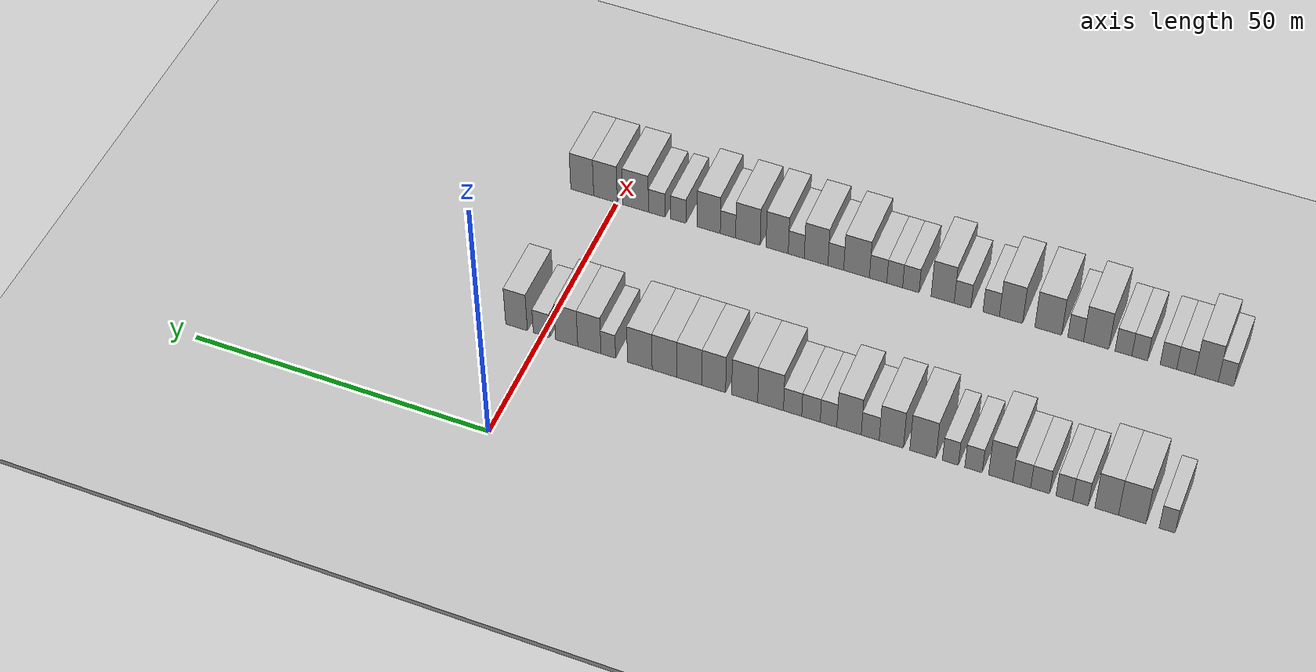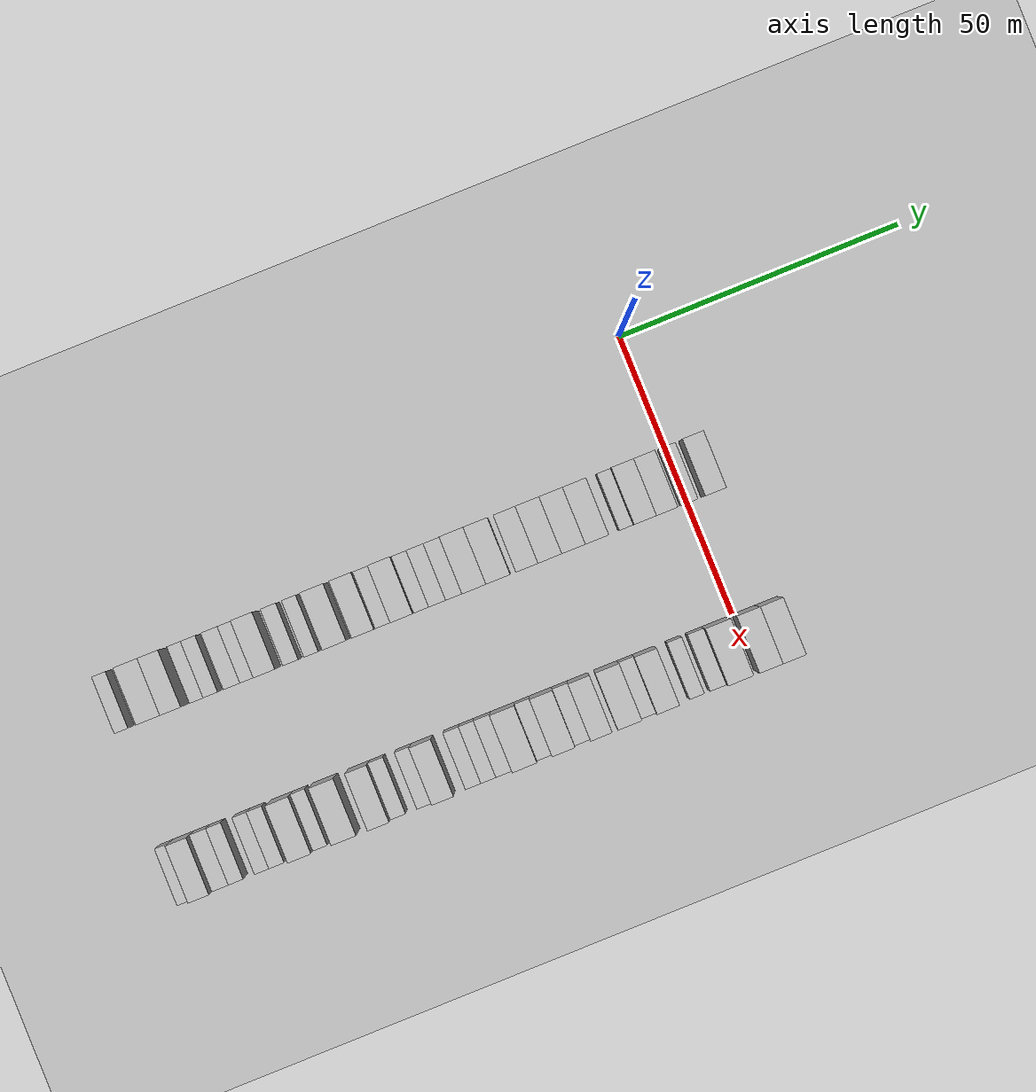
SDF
<sdf version="1.6">
 <world name="default">
  <include><name>ground_plane_1</name><uri>model://HANNAS_ground_plane</uri></include>
  <include>
   <name>ground_plane_2</name>
   <uri>model://HANNAS_ground_plane</uri>
   <pose>100 0 0  0 0 0</pose>
  </include>
  <model name="building_32">
   <static>1</static>
   <pose>25.0000 -100.3244 0 0.000000 0.000000 0.000000</pose>
   <link name="link">
    <pose>0 0 3.00 0 0 0</pose>
    <collision name="collision"><geometry><box><size>10.0000 2.4247 6.0000</size></box></geometry></collision>
    <visual name="visual">
     <cast_shadows>0</cast_shadows>
     <geometry><box><size>10.0000 2.4247 6.0000</size></box></geometry>
     <material>
      <script>
       <uri>model://HANNAS_wall/materials/scripts</uri>
       <uri>model://HANNAS_wall/materials/textures</uri>
       <name>vrc/HANNAS_wall</name>
      </script>
     </material>
    </visual>
   </link>
  </model>
  <model name="building_33">
   <static>1</static>
   <pose>25.0000 -95.0097 0 0.000000 0.000000 0.000000</pose>
   <link name="link">
    <pose>0 0 4.50 0 0 0</pose>
    <collision name="collision"><geometry><box><size>10.0000 4.2046 9.0000</size></box></geometry></collision>
    <visual name="visual">
     <cast_shadows>0</cast_shadows>
     <geometry><box><size>10.0000 4.2046 9.0000</size></box></geometry>
     <material>
      <script>
       <uri>model://HANNAS_wall/materials/scripts</uri>
       <uri>model://HANNAS_wall/materials/textures</uri>
       <name>vrc/HANNAS_wall</name>
      </script>
     </material>
    </visual>
   </link>
  </model>
  <model name="building_34">
   <static>1</static>
   <pose>25.0000 -91.0853 0 0.000000 0.000000 0.000000</pose>
   <link name="link">
    <pose>0 0 4.50 0 0 0</pose>
    <collision name="collision"><geometry><box><size>10.0000 3.6442 9.0000</size></box></geometry></collision>
    <visual name="visual">
     <cast_shadows>0</cast_shadows>
     <geometry><box><size>10.0000 3.6442 9.0000</size></box></geometry>
     <material>
      <script>
       <uri>model://HANNAS_wall/materials/scripts</uri>
       <uri>model://HANNAS_wall/materials/textures</uri>
       <name>vrc/HANNAS_wall</name>
      </script>
     </material>
    </visual>
   </link>
  </model>
  <model name="building_35">
   <static>1</static>
   <pose>25.0000 -87.0597 0 0.000000 0.000000 0.000000</pose>
   <link name="link">
    <pose>0 0 3.00 0 0 0</pose>
    <collision name="collision"><geometry><box><size>10.0000 2.4070 6.0000</size></box></geometry></collision>
    <visual name="visual">
     <cast_shadows>0</cast_shadows>
     <geometry><box><size>10.0000 2.4070 6.0000</size></box></geometry>
     <material>
      <script>
       <uri>model://HANNAS_wall/materials/scripts</uri>
       <uri>model://HANNAS_wall/materials/textures</uri>
       <name>vrc/HANNAS_wall</name>
      </script>
     </material>
    </visual>
   </link>
  </model>
  <model name="building_36">
   <static>1</static>
   <pose>25.0000 -84.5684 0 0.000000 0.000000 0.000000</pose>
   <link name="link">
    <pose>0 0 3.00 0 0 0</pose>
    <collision name="collision"><geometry><box><size>10.0000 2.5756 6.0000</size></box></geometry></collision>
    <visual name="visual">
     <cast_shadows>0</cast_shadows>
     <geometry><box><size>10.0000 2.5756 6.0000</size></box></geometry>
     <material>
      <script>
       <uri>model://HANNAS_wall/materials/scripts</uri>
       <uri>model://HANNAS_wall/materials/textures</uri>
       <name>vrc/HANNAS_wall</name>
      </script>
     </material>
    </visual>
   </link>
  </model>
  <model name="building_37">
   <static>1</static>
   <pose>25.0000 -80.8199 0 0.000000 0.000000 0.000000</pose>
   <link name="link">
    <pose>0 0 3.00 0 0 0</pose>
    <collision name="collision"><geometry><box><size>10.0000 2.9214 6.0000</size></box></geometry></collision>
    <visual name="visual">
     <cast_shadows>0</cast_shadows>
     <geometry><box><size>10.0000 2.9214 6.0000</size></box></geometry>
     <material>
      <script>
       <uri>model://HANNAS_wall/materials/scripts</uri>
       <uri>model://HANNAS_wall/materials/textures</uri>
       <name>vrc/HANNAS_wall</name>
      </script>
     </material>
    </visual>
   </link>
  </model>
  <model name="building_38">
   <static>1</static>
   <pose>25.0000 -77.9634 0 0.000000 0.000000 0.000000</pose>
   <link name="link">
    <pose>0 0 3.00 0 0 0</pose>
    <collision name="collision"><geometry><box><size>10.0000 2.7915 6.0000</size></box></geometry></collision>
    <visual name="visual">
     <cast_shadows>0</cast_shadows>
     <geometry><box><size>10.0000 2.7915 6.0000</size></box></geometry>
     <material>
      <script>
       <uri>model://HANNAS_wall/materials/scripts</uri>
       <uri>model://HANNAS_wall/materials/textures</uri>
       <name>vrc/HANNAS_wall</name>
      </script>
     </material>
    </visual>
   </link>
  </model>
  <model name="building_39">
   <static>1</static>
   <pose>25.0000 -74.6773 0 0.000000 0.000000 0.000000</pose>
   <link name="link">
    <pose>0 0 4.50 0 0 0</pose>
    <collision name="collision"><geometry><box><size>10.0000 3.7808 9.0000</size></box></geometry></collision>
    <visual name="visual">
     <cast_shadows>0</cast_shadows>
     <geometry><box><size>10.0000 3.7808 9.0000</size></box></geometry>
     <material>
      <script>
       <uri>model://HANNAS_wall/materials/scripts</uri>
       <uri>model://HANNAS_wall/materials/textures</uri>
       <name>vrc/HANNAS_wall</name>
      </script>
     </material>
    </visual>
   </link>
  </model>
  <model name="building_40">
   <static>1</static>
   <pose>25.0000 -70.4154 0 0.000000 0.000000 0.000000</pose>
   <link name="link">
    <pose>0 0 3.00 0 0 0</pose>
    <collision name="collision"><geometry><box><size>10.0000 2.7430 6.0000</size></box></geometry></collision>
    <visual name="visual">
     <cast_shadows>0</cast_shadows>
     <geometry><box><size>10.0000 2.7430 6.0000</size></box></geometry>
     <material>
      <script>
       <uri>model://HANNAS_wall/materials/scripts</uri>
       <uri>model://HANNAS_wall/materials/textures</uri>
       <name>vrc/HANNAS_wall</name>
      </script>
     </material>
    </visual>
   </link>
  </model>
  <model name="building_41">
   <static>1</static>
   <pose>25.0000 -66.7813 0 0.000000 0.000000 0.000000</pose>
   <link name="link">
    <pose>0 0 3.00 0 0 0</pose>
    <collision name="collision"><geometry><box><size>10.0000 2.5254 6.0000</size></box></geometry></collision>
    <visual name="visual">
     <cast_shadows>0</cast_shadows>
     <geometry><box><size>10.0000 2.5254 6.0000</size></box></geometry>
     <material>
      <script>
       <uri>model://HANNAS_wall/materials/scripts</uri>
       <uri>model://HANNAS_wall/materials/textures</uri>
       <name>vrc/HANNAS_wall</name>
      </script>
     </material>
    </visual>
   </link>
  </model>
  <model name="building_42">
   <static>1</static>
   <pose>25.0000 -62.4345 0 0.000000 0.000000 0.000000</pose>
   <link name="link">
    <pose>0 0 4.50 0 0 0</pose>
    <collision name="collision"><geometry><box><size>10.0000 4.1681 9.0000</size></box></geometry></collision>
    <visual name="visual">
     <cast_shadows>0</cast_shadows>
     <geometry><box><size>10.0000 4.1681 9.0000</size></box></geometry>
     <material>
      <script>
       <uri>model://HANNAS_wall/materials/scripts</uri>
       <uri>model://HANNAS_wall/materials/textures</uri>
       <name>vrc/HANNAS_wall</name>
      </script>
     </material>
    </visual>
   </link>
  </model>
  <model name="building_43">
   <static>1</static>
   <pose>25.0000 -57.4151 0 0.000000 0.000000 0.000000</pose>
   <link name="link">
    <pose>0 0 4.50 0 0 0</pose>
    <collision name="collision"><geometry><box><size>10.0000 3.8708 9.0000</size></box></geometry></collision>
    <visual name="visual">
     <cast_shadows>0</cast_shadows>
     <geometry><box><size>10.0000 3.8708 9.0000</size></box></geometry>
     <material>
      <script>
       <uri>model://HANNAS_wall/materials/scripts</uri>
       <uri>model://HANNAS_wall/materials/textures</uri>
       <name>vrc/HANNAS_wall</name>
      </script>
     </material>
    </visual>
   </link>
  </model>
  <model name="building_44">
   <static>1</static>
   <pose>25.0000 -54.0437 0 0.000000 0.000000 0.000000</pose>
   <link name="link">
    <pose>0 0 3.00 0 0 0</pose>
    <collision name="collision"><geometry><box><size>10.0000 2.8720 6.0000</size></box></geometry></collision>
    <visual name="visual">
     <cast_shadows>0</cast_shadows>
     <geometry><box><size>10.0000 2.8720 6.0000</size></box></geometry>
     <material>
      <script>
       <uri>model://HANNAS_wall/materials/scripts</uri>
       <uri>model://HANNAS_wall/materials/textures</uri>
       <name>vrc/HANNAS_wall</name>
      </script>
     </material>
    </visual>
   </link>
  </model>
  <model name="building_45">
   <static>1</static>
   <pose>25.0000 -50.6438 0 0.000000 0.000000 0.000000</pose>
   <link name="link">
    <pose>0 0 4.50 0 0 0</pose>
    <collision name="collision"><geometry><box><size>10.0000 3.9276 9.0000</size></box></geometry></collision>
    <visual name="visual">
     <cast_shadows>0</cast_shadows>
     <geometry><box><size>10.0000 3.9276 9.0000</size></box></geometry>
     <material>
      <script>
       <uri>model://HANNAS_wall/materials/scripts</uri>
       <uri>model://HANNAS_wall/materials/textures</uri>
       <name>vrc/HANNAS_wall</name>
      </script>
     </material>
    </visual>
   </link>
  </model>
  <model name="building_46">
   <static>1</static>
   <pose>25.0000 -47.3493 0 0.000000 0.000000 0.000000</pose>
   <link name="link">
    <pose>0 0 3.00 0 0 0</pose>
    <collision name="collision"><geometry><box><size>10.0000 2.6614 6.0000</size></box></geometry></collision>
    <visual name="visual">
     <cast_shadows>0</cast_shadows>
     <geometry><box><size>10.0000 2.6614 6.0000</size></box></geometry>
     <material>
      <script>
       <uri>model://HANNAS_wall/materials/scripts</uri>
       <uri>model://HANNAS_wall/materials/textures</uri>
       <name>vrc/HANNAS_wall</name>
      </script>
     </material>
    </visual>
   </link>
  </model>
  <model name="building_47">
   <static>1</static>
   <pose>25.0000 -44.5205 0 0.000000 0.000000 0.000000</pose>
   <link name="link">
    <pose>0 0 3.00 0 0 0</pose>
    <collision name="collision"><geometry><box><size>10.0000 2.9962 6.0000</size></box></geometry></collision>
    <visual name="visual">
     <cast_shadows>0</cast_shadows>
     <geometry><box><size>10.0000 2.9962 6.0000</size></box></geometry>
     <material>
      <script>
       <uri>model://HANNAS_wall/materials/scripts</uri>
       <uri>model://HANNAS_wall/materials/textures</uri>
       <name>vrc/HANNAS_wall</name>
      </script>
     </material>
    </visual>
   </link>
  </model>
  <model name="building_48">
   <static>1</static>
   <pose>25.0000 -41.5424 0 0.000000 0.000000 0.000000</pose>
   <link name="link">
    <pose>0 0 3.00 0 0 0</pose>
    <collision name="collision"><geometry><box><size>10.0000 2.9599 6.0000</size></box></geometry></collision>
    <visual name="visual">
     <cast_shadows>0</cast_shadows>
     <geometry><box><size>10.0000 2.9599 6.0000</size></box></geometry>
     <material>
      <script>
       <uri>model://HANNAS_wall/materials/scripts</uri>
       <uri>model://HANNAS_wall/materials/textures</uri>
       <name>vrc/HANNAS_wall</name>
      </script>
     </material>
    </visual>
   </link>
  </model>
  <model name="building_49">
   <static>1</static>
   <pose>25.0000 -37.9625 0 0.000000 0.000000 0.000000</pose>
   <link name="link">
    <pose>0 0 4.50 0 0 0</pose>
    <collision name="collision"><geometry><box><size>10.0000 4.2000 9.0000</size></box></geometry></collision>
    <visual name="visual">
     <cast_shadows>0</cast_shadows>
     <geometry><box><size>10.0000 4.2000 9.0000</size></box></geometry>
     <material>
      <script>
       <uri>model://HANNAS_wall/materials/scripts</uri>
       <uri>model://HANNAS_wall/materials/textures</uri>
       <name>vrc/HANNAS_wall</name>
      </script>
     </material>
    </visual>
   </link>
  </model>
  <model name="building_50">
   <static>1</static>
   <pose>25.0000 -33.7397 0 0.000000 0.000000 0.000000</pose>
   <link name="link">
    <pose>0 0 4.50 0 0 0</pose>
    <collision name="collision"><geometry><box><size>10.0000 4.2455 9.0000</size></box></geometry></collision>
    <visual name="visual">
     <cast_shadows>0</cast_shadows>
     <geometry><box><size>10.0000 4.2455 9.0000</size></box></geometry>
     <material>
      <script>
       <uri>model://HANNAS_wall/materials/scripts</uri>
       <uri>model://HANNAS_wall/materials/textures</uri>
       <name>vrc/HANNAS_wall</name>
      </script>
     </material>
    </visual>
   </link>
  </model>
  <model name="building_51">
   <static>1</static>
   <pose>25.0000 -28.6835 0 0.000000 0.000000 0.000000</pose>
   <link name="link">
    <pose>0 0 4.50 0 0 0</pose>
    <collision name="collision"><geometry><box><size>10.0000 3.8669 9.0000</size></box></geometry></collision>
    <visual name="visual">
     <cast_shadows>0</cast_shadows>
     <geometry><box><size>10.0000 3.8669 9.0000</size></box></geometry>
     <material>
      <script>
       <uri>model://HANNAS_wall/materials/scripts</uri>
       <uri>model://HANNAS_wall/materials/textures</uri>
       <name>vrc/HANNAS_wall</name>
      </script>
     </material>
    </visual>
   </link>
  </model>
  <model name="building_52">
   <static>1</static>
   <pose>25.0000 -24.6707 0 0.000000 0.000000 0.000000</pose>
   <link name="link">
    <pose>0 0 4.50 0 0 0</pose>
    <collision name="collision"><geometry><box><size>10.0000 4.1587 9.0000</size></box></geometry></collision>
    <visual name="visual">
     <cast_shadows>0</cast_shadows>
     <geometry><box><size>10.0000 4.1587 9.0000</size></box></geometry>
     <material>
      <script>
       <uri>model://HANNAS_wall/materials/scripts</uri>
       <uri>model://HANNAS_wall/materials/textures</uri>
       <name>vrc/HANNAS_wall</name>
      </script>
     </material>
    </visual>
   </link>
  </model>
  <model name="building_53">
   <static>1</static>
   <pose>25.0000 -20.5302 0 0.000000 0.000000 0.000000</pose>
   <link name="link">
    <pose>0 0 4.50 0 0 0</pose>
    <collision name="collision"><geometry><box><size>10.0000 4.1223 9.0000</size></box></geometry></collision>
    <visual name="visual">
     <cast_shadows>0</cast_shadows>
     <geometry><box><size>10.0000 4.1223 9.0000</size></box></geometry>
     <material>
      <script>
       <uri>model://HANNAS_wall/materials/scripts</uri>
       <uri>model://HANNAS_wall/materials/textures</uri>
       <name>vrc/HANNAS_wall</name>
      </script>
     </material>
    </visual>
   </link>
  </model>
  <model name="building_54">
   <static>1</static>
   <pose>25.0000 -16.4165 0 0.000000 0.000000 0.000000</pose>
   <link name="link">
    <pose>0 0 4.50 0 0 0</pose>
    <collision name="collision"><geometry><box><size>10.0000 4.1052 9.0000</size></box></geometry></collision>
    <visual name="visual">
     <cast_shadows>0</cast_shadows>
     <geometry><box><size>10.0000 4.1052 9.0000</size></box></geometry>
     <material>
      <script>
       <uri>model://HANNAS_wall/materials/scripts</uri>
       <uri>model://HANNAS_wall/materials/textures</uri>
       <name>vrc/HANNAS_wall</name>
      </script>
     </material>
    </visual>
   </link>
  </model>
  <model name="building_55">
   <static>1</static>
   <pose>25.0000 -11.1443 0 0.000000 0.000000 0.000000</pose>
   <link name="link">
    <pose>0 0 3.00 0 0 0</pose>
    <collision name="collision"><geometry><box><size>10.0000 2.4392 6.0000</size></box></geometry></collision>
    <visual name="visual">
     <cast_shadows>0</cast_shadows>
     <geometry><box><size>10.0000 2.4392 6.0000</size></box></geometry>
     <material>
      <script>
       <uri>model://HANNAS_wall/materials/scripts</uri>
       <uri>model://HANNAS_wall/materials/textures</uri>
       <name>vrc/HANNAS_wall</name>
      </script>
     </material>
    </visual>
   </link>
  </model>
  <model name="building_56">
   <static>1</static>
   <pose>25.0000 -7.9678 0 0.000000 0.000000 0.000000</pose>
   <link name="link">
    <pose>0 0 4.50 0 0 0</pose>
    <collision name="collision"><geometry><box><size>10.0000 3.9137 9.0000</size></box></geometry></collision>
    <visual name="visual">
     <cast_shadows>0</cast_shadows>
     <geometry><box><size>10.0000 3.9137 9.0000</size></box></geometry>
     <material>
      <script>
       <uri>model://HANNAS_wall/materials/scripts</uri>
       <uri>model://HANNAS_wall/materials/textures</uri>
       <name>vrc/HANNAS_wall</name>
      </script>
     </material>
    </visual>
   </link>
  </model>
  <model name="building_57">
   <static>1</static>
   <pose>25.0000 -4.1392 0 0.000000 0.000000 0.000000</pose>
   <link name="link">
    <pose>0 0 4.50 0 0 0</pose>
    <collision name="collision"><geometry><box><size>10.0000 3.7436 9.0000</size></box></geometry></collision>
    <visual name="visual">
     <cast_shadows>0</cast_shadows>
     <geometry><box><size>10.0000 3.7436 9.0000</size></box></geometry>
     <material>
      <script>
       <uri>model://HANNAS_wall/materials/scripts</uri>
       <uri>model://HANNAS_wall/materials/textures</uri>
       <name>vrc/HANNAS_wall</name>
      </script>
     </material>
    </visual>
   </link>
  </model>
  <model name="building_58">
   <static>1</static>
   <pose>25.0000 0.1297 0 0.000000 0.000000 0.000000</pose>
   <link name="link">
    <pose>0 0 3.00 0 0 0</pose>
    <collision name="collision"><geometry><box><size>10.0000 2.7941 6.0000</size></box></geometry></collision>
    <visual name="visual">
     <cast_shadows>0</cast_shadows>
     <geometry><box><size>10.0000 2.7941 6.0000</size></box></geometry>
     <material>
      <script>
       <uri>model://HANNAS_wall/materials/scripts</uri>
       <uri>model://HANNAS_wall/materials/textures</uri>
       <name>vrc/HANNAS_wall</name>
      </script>
     </material>
    </visual>
   </link>
  </model>
  <model name="building_59">
   <static>1</static>
   <pose>25.0000 4.3772 0 0.000000 0.000000 0.000000</pose>
   <link name="link">
    <pose>0 0 4.50 0 0 0</pose>
    <collision name="collision"><geometry><box><size>10.0000 3.7009 9.0000</size></box></geometry></collision>
    <visual name="visual">
     <cast_shadows>0</cast_shadows>
     <geometry><box><size>10.0000 3.7009 9.0000</size></box></geometry>
     <material>
      <script>
       <uri>model://HANNAS_wall/materials/scripts</uri>
       <uri>model://HANNAS_wall/materials/textures</uri>
       <name>vrc/HANNAS_wall</name>
      </script>
     </material>
    </visual>
   </link>
  </model>
  <model name="building_144">
   <static>1</static>
   <pose>55.0000 -101.2905 0 0.000000 0.000000 0.000000</pose>
   <link name="link">
    <pose>0 0 3.00 0 0 0</pose>
    <collision name="collision"><geometry><box><size>10.0000 2.4564 6.0000</size></box></geometry></collision>
    <visual name="visual">
     <cast_shadows>0</cast_shadows>
     <geometry><box><size>10.0000 2.4564 6.0000</size></box></geometry>
     <material>
      <script>
       <uri>model://HANNAS_wall/materials/scripts</uri>
       <uri>model://HANNAS_wall/materials/textures</uri>
       <name>vrc/HANNAS_wall</name>
      </script>
     </material>
    </visual>
   </link>
  </model>
  <model name="building_145">
   <static>1</static>
   <pose>55.0000 -98.2265 0 0.000000 0.000000 0.000000</pose>
   <link name="link">
    <pose>0 0 4.50 0 0 0</pose>
    <collision name="collision"><geometry><box><size>10.0000 3.6717 9.0000</size></box></geometry></collision>
    <visual name="visual">
     <cast_shadows>0</cast_shadows>
     <geometry><box><size>10.0000 3.6717 9.0000</size></box></geometry>
     <material>
      <script>
       <uri>model://HANNAS_wall/materials/scripts</uri>
       <uri>model://HANNAS_wall/materials/textures</uri>
       <name>vrc/HANNAS_wall</name>
      </script>
     </material>
    </visual>
   </link>
  </model>
  <model name="building_146">
   <static>1</static>
   <pose>55.0000 -94.9343 0 0.000000 0.000000 0.000000</pose>
   <link name="link">
    <pose>0 0 3.00 0 0 0</pose>
    <collision name="collision"><geometry><box><size>10.0000 2.9125 6.0000</size></box></geometry></collision>
    <visual name="visual">
     <cast_shadows>0</cast_shadows>
     <geometry><box><size>10.0000 2.9125 6.0000</size></box></geometry>
     <material>
      <script>
       <uri>model://HANNAS_wall/materials/scripts</uri>
       <uri>model://HANNAS_wall/materials/textures</uri>
       <name>vrc/HANNAS_wall</name>
      </script>
     </material>
    </visual>
   </link>
  </model>
  <model name="building_147">
   <static>1</static>
   <pose>55.0000 -92.1638 0 0.000000 0.000000 0.000000</pose>
   <link name="link">
    <pose>0 0 3.00 0 0 0</pose>
    <collision name="collision"><geometry><box><size>10.0000 2.6286 6.0000</size></box></geometry></collision>
    <visual name="visual">
     <cast_shadows>0</cast_shadows>
     <geometry><box><size>10.0000 2.6286 6.0000</size></box></geometry>
     <material>
      <script>
       <uri>model://HANNAS_wall/materials/scripts</uri>
       <uri>model://HANNAS_wall/materials/textures</uri>
       <name>vrc/HANNAS_wall</name>
      </script>
     </material>
    </visual>
   </link>
  </model>
  <model name="building_148">
   <static>1</static>
   <pose>55.0000 -87.5901 0 0.000000 0.000000 0.000000</pose>
   <link name="link">
    <pose>0 0 3.00 0 0 0</pose>
    <collision name="collision"><geometry><box><size>10.0000 2.5188 6.0000</size></box></geometry></collision>
    <visual name="visual">
     <cast_shadows>0</cast_shadows>
     <geometry><box><size>10.0000 2.5188 6.0000</size></box></geometry>
     <material>
      <script>
       <uri>model://HANNAS_wall/materials/scripts</uri>
       <uri>model://HANNAS_wall/materials/textures</uri>
       <name>vrc/HANNAS_wall</name>
      </script>
     </material>
    </visual>
   </link>
  </model>
  <model name="building_149">
   <static>1</static>
   <pose>55.0000 -84.9854 0 0.000000 0.000000 0.000000</pose>
   <link name="link">
    <pose>0 0 3.00 0 0 0</pose>
    <collision name="collision"><geometry><box><size>10.0000 2.6905 6.0000</size></box></geometry></collision>
    <visual name="visual">
     <cast_shadows>0</cast_shadows>
     <geometry><box><size>10.0000 2.6905 6.0000</size></box></geometry>
     <material>
      <script>
       <uri>model://HANNAS_wall/materials/scripts</uri>
       <uri>model://HANNAS_wall/materials/textures</uri>
       <name>vrc/HANNAS_wall</name>
      </script>
     </material>
    </visual>
   </link>
  </model>
  <model name="building_150">
   <static>1</static>
   <pose>55.0000 -80.5971 0 0.000000 0.000000 0.000000</pose>
   <link name="link">
    <pose>0 0 4.50 0 0 0</pose>
    <collision name="collision"><geometry><box><size>10.0000 4.0862 9.0000</size></box></geometry></collision>
    <visual name="visual">
     <cast_shadows>0</cast_shadows>
     <geometry><box><size>10.0000 4.0862 9.0000</size></box></geometry>
     <material>
      <script>
       <uri>model://HANNAS_wall/materials/scripts</uri>
       <uri>model://HANNAS_wall/materials/textures</uri>
       <name>vrc/HANNAS_wall</name>
      </script>
     </material>
    </visual>
   </link>
  </model>
  <model name="building_151">
   <static>1</static>
   <pose>55.0000 -77.2871 0 0.000000 0.000000 0.000000</pose>
   <link name="link">
    <pose>0 0 3.00 0 0 0</pose>
    <collision name="collision"><geometry><box><size>10.0000 2.5338 6.0000</size></box></geometry></collision>
    <visual name="visual">
     <cast_shadows>0</cast_shadows>
     <geometry><box><size>10.0000 2.5338 6.0000</size></box></geometry>
     <material>
      <script>
       <uri>model://HANNAS_wall/materials/scripts</uri>
       <uri>model://HANNAS_wall/materials/textures</uri>
       <name>vrc/HANNAS_wall</name>
      </script>
     </material>
    </visual>
   </link>
  </model>
  <model name="building_152">
   <static>1</static>
   <pose>55.0000 -72.8468 0 0.000000 0.000000 0.000000</pose>
   <link name="link">
    <pose>0 0 4.50 0 0 0</pose>
    <collision name="collision"><geometry><box><size>10.0000 4.3469 9.0000</size></box></geometry></collision>
    <visual name="visual">
     <cast_shadows>0</cast_shadows>
     <geometry><box><size>10.0000 4.3469 9.0000</size></box></geometry>
     <material>
      <script>
       <uri>model://HANNAS_wall/materials/scripts</uri>
       <uri>model://HANNAS_wall/materials/textures</uri>
       <name>vrc/HANNAS_wall</name>
      </script>
     </material>
    </visual>
   </link>
  </model>
  <model name="building_153">
   <static>1</static>
   <pose>55.0000 -66.7767 0 0.000000 0.000000 0.000000</pose>
   <link name="link">
    <pose>0 0 4.50 0 0 0</pose>
    <collision name="collision"><geometry><box><size>10.0000 3.7933 9.0000</size></box></geometry></collision>
    <visual name="visual">
     <cast_shadows>0</cast_shadows>
     <geometry><box><size>10.0000 3.7933 9.0000</size></box></geometry>
     <material>
      <script>
       <uri>model://HANNAS_wall/materials/scripts</uri>
       <uri>model://HANNAS_wall/materials/textures</uri>
       <name>vrc/HANNAS_wall</name>
      </script>
     </material>
    </visual>
   </link>
  </model>
  <model name="building_154">
   <static>1</static>
   <pose>55.0000 -63.5321 0 0.000000 0.000000 0.000000</pose>
   <link name="link">
    <pose>0 0 3.00 0 0 0</pose>
    <collision name="collision"><geometry><box><size>10.0000 2.6958 6.0000</size></box></geometry></collision>
    <visual name="visual">
     <cast_shadows>0</cast_shadows>
     <geometry><box><size>10.0000 2.6958 6.0000</size></box></geometry>
     <material>
      <script>
       <uri>model://HANNAS_wall/materials/scripts</uri>
       <uri>model://HANNAS_wall/materials/textures</uri>
       <name>vrc/HANNAS_wall</name>
      </script>
     </material>
    </visual>
   </link>
  </model>
  <model name="building_155">
   <static>1</static>
   <pose>55.0000 -58.8117 0 0.000000 0.000000 0.000000</pose>
   <link name="link">
    <pose>0 0 3.00 0 0 0</pose>
    <collision name="collision"><geometry><box><size>10.0000 2.7451 6.0000</size></box></geometry></collision>
    <visual name="visual">
     <cast_shadows>0</cast_shadows>
     <geometry><box><size>10.0000 2.7451 6.0000</size></box></geometry>
     <material>
      <script>
       <uri>model://HANNAS_wall/materials/scripts</uri>
       <uri>model://HANNAS_wall/materials/textures</uri>
       <name>vrc/HANNAS_wall</name>
      </script>
     </material>
    </visual>
   </link>
  </model>
  <model name="building_156">
   <static>1</static>
   <pose>55.0000 -55.5295 0 0.000000 0.000000 0.000000</pose>
   <link name="link">
    <pose>0 0 4.50 0 0 0</pose>
    <collision name="collision"><geometry><box><size>10.0000 3.8194 9.0000</size></box></geometry></collision>
    <visual name="visual">
     <cast_shadows>0</cast_shadows>
     <geometry><box><size>10.0000 3.8194 9.0000</size></box></geometry>
     <material>
      <script>
       <uri>model://HANNAS_wall/materials/scripts</uri>
       <uri>model://HANNAS_wall/materials/textures</uri>
       <name>vrc/HANNAS_wall</name>
      </script>
     </material>
    </visual>
   </link>
  </model>
  <model name="building_157">
   <static>1</static>
   <pose>55.0000 -50.2514 0 0.000000 0.000000 0.000000</pose>
   <link name="link">
    <pose>0 0 3.00 0 0 0</pose>
    <collision name="collision"><geometry><box><size>10.0000 2.7368 6.0000</size></box></geometry></collision>
    <visual name="visual">
     <cast_shadows>0</cast_shadows>
     <geometry><box><size>10.0000 2.7368 6.0000</size></box></geometry>
     <material>
      <script>
       <uri>model://HANNAS_wall/materials/scripts</uri>
       <uri>model://HANNAS_wall/materials/textures</uri>
       <name>vrc/HANNAS_wall</name>
      </script>
     </material>
    </visual>
   </link>
  </model>
  <model name="building_158">
   <static>1</static>
   <pose>55.0000 -47.5598 0 0.000000 0.000000 0.000000</pose>
   <link name="link">
    <pose>0 0 3.00 0 0 0</pose>
    <collision name="collision"><geometry><box><size>10.0000 2.6464 6.0000</size></box></geometry></collision>
    <visual name="visual">
     <cast_shadows>0</cast_shadows>
     <geometry><box><size>10.0000 2.6464 6.0000</size></box></geometry>
     <material>
      <script>
       <uri>model://HANNAS_wall/materials/scripts</uri>
       <uri>model://HANNAS_wall/materials/textures</uri>
       <name>vrc/HANNAS_wall</name>
      </script>
     </material>
    </visual>
   </link>
  </model>
  <model name="building_159">
   <static>1</static>
   <pose>55.0000 -44.7849 0 0.000000 0.000000 0.000000</pose>
   <link name="link">
    <pose>0 0 3.00 0 0 0</pose>
    <collision name="collision"><geometry><box><size>10.0000 2.9034 6.0000</size></box></geometry></collision>
    <visual name="visual">
     <cast_shadows>0</cast_shadows>
     <geometry><box><size>10.0000 2.9034 6.0000</size></box></geometry>
     <material>
      <script>
       <uri>model://HANNAS_wall/materials/scripts</uri>
       <uri>model://HANNAS_wall/materials/textures</uri>
       <name>vrc/HANNAS_wall</name>
      </script>
     </material>
    </visual>
   </link>
  </model>
  <model name="building_160">
   <static>1</static>
   <pose>55.0000 -41.1671 0 0.000000 0.000000 0.000000</pose>
   <link name="link">
    <pose>0 0 4.50 0 0 0</pose>
    <collision name="collision"><geometry><box><size>10.0000 4.3322 9.0000</size></box></geometry></collision>
    <visual name="visual">
     <cast_shadows>0</cast_shadows>
     <geometry><box><size>10.0000 4.3322 9.0000</size></box></geometry>
     <material>
      <script>
       <uri>model://HANNAS_wall/materials/scripts</uri>
       <uri>model://HANNAS_wall/materials/textures</uri>
       <name>vrc/HANNAS_wall</name>
      </script>
     </material>
    </visual>
   </link>
  </model>
  <model name="building_161">
   <static>1</static>
   <pose>55.0000 -37.6734 0 0.000000 0.000000 0.000000</pose>
   <link name="link">
    <pose>0 0 3.00 0 0 0</pose>
    <collision name="collision"><geometry><box><size>10.0000 2.6553 6.0000</size></box></geometry></collision>
    <visual name="visual">
     <cast_shadows>0</cast_shadows>
     <geometry><box><size>10.0000 2.6553 6.0000</size></box></geometry>
     <material>
      <script>
       <uri>model://HANNAS_wall/materials/scripts</uri>
       <uri>model://HANNAS_wall/materials/textures</uri>
       <name>vrc/HANNAS_wall</name>
      </script>
     </material>
    </visual>
   </link>
  </model>
  <model name="building_162">
   <static>1</static>
   <pose>55.0000 -34.3370 0 0.000000 0.000000 0.000000</pose>
   <link name="link">
    <pose>0 0 4.50 0 0 0</pose>
    <collision name="collision"><geometry><box><size>10.0000 4.0175 9.0000</size></box></geometry></collision>
    <visual name="visual">
     <cast_shadows>0</cast_shadows>
     <geometry><box><size>10.0000 4.0175 9.0000</size></box></geometry>
     <material>
      <script>
       <uri>model://HANNAS_wall/materials/scripts</uri>
       <uri>model://HANNAS_wall/materials/textures</uri>
       <name>vrc/HANNAS_wall</name>
      </script>
     </material>
    </visual>
   </link>
  </model>
  <model name="building_163">
   <static>1</static>
   <pose>55.0000 -30.9684 0 0.000000 0.000000 0.000000</pose>
   <link name="link">
    <pose>0 0 3.00 0 0 0</pose>
    <collision name="collision"><geometry><box><size>10.0000 2.7197 6.0000</size></box></geometry></collision>
    <visual name="visual">
     <cast_shadows>0</cast_shadows>
     <geometry><box><size>10.0000 2.7197 6.0000</size></box></geometry>
     <material>
      <script>
       <uri>model://HANNAS_wall/materials/scripts</uri>
       <uri>model://HANNAS_wall/materials/textures</uri>
       <name>vrc/HANNAS_wall</name>
      </script>
     </material>
    </visual>
   </link>
  </model>
  <model name="building_164">
   <static>1</static>
   <pose>55.0000 -27.7166 0 0.000000 0.000000 0.000000</pose>
   <link name="link">
    <pose>0 0 4.50 0 0 0</pose>
    <collision name="collision"><geometry><box><size>10.0000 3.7839 9.0000</size></box></geometry></collision>
    <visual name="visual">
     <cast_shadows>0</cast_shadows>
     <geometry><box><size>10.0000 3.7839 9.0000</size></box></geometry>
     <material>
      <script>
       <uri>model://HANNAS_wall/materials/scripts</uri>
       <uri>model://HANNAS_wall/materials/textures</uri>
       <name>vrc/HANNAS_wall</name>
      </script>
     </material>
    </visual>
   </link>
  </model>
  <model name="building_165">
   <static>1</static>
   <pose>55.0000 -22.7234 0 0.000000 0.000000 0.000000</pose>
   <link name="link">
    <pose>0 0 4.50 0 0 0</pose>
    <collision name="collision"><geometry><box><size>10.0000 4.2025 9.0000</size></box></geometry></collision>
    <visual name="visual">
     <cast_shadows>0</cast_shadows>
     <geometry><box><size>10.0000 4.2025 9.0000</size></box></geometry>
     <material>
      <script>
       <uri>model://HANNAS_wall/materials/scripts</uri>
       <uri>model://HANNAS_wall/materials/textures</uri>
       <name>vrc/HANNAS_wall</name>
      </script>
     </material>
    </visual>
   </link>
  </model>
  <model name="building_166">
   <static>1</static>
   <pose>55.0000 -19.2969 0 0.000000 0.000000 0.000000</pose>
   <link name="link">
    <pose>0 0 3.00 0 0 0</pose>
    <collision name="collision"><geometry><box><size>10.0000 2.6505 6.0000</size></box></geometry></collision>
    <visual name="visual">
     <cast_shadows>0</cast_shadows>
     <geometry><box><size>10.0000 2.6505 6.0000</size></box></geometry>
     <material>
      <script>
       <uri>model://HANNAS_wall/materials/scripts</uri>
       <uri>model://HANNAS_wall/materials/textures</uri>
       <name>vrc/HANNAS_wall</name>
      </script>
     </material>
    </visual>
   </link>
  </model>
  <model name="building_167">
   <static>1</static>
   <pose>55.0000 -16.0056 0 0.000000 0.000000 0.000000</pose>
   <link name="link">
    <pose>0 0 4.50 0 0 0</pose>
    <collision name="collision"><geometry><box><size>10.0000 3.9320 9.0000</size></box></geometry></collision>
    <visual name="visual">
     <cast_shadows>0</cast_shadows>
     <geometry><box><size>10.0000 3.9320 9.0000</size></box></geometry>
     <material>
      <script>
       <uri>model://HANNAS_wall/materials/scripts</uri>
       <uri>model://HANNAS_wall/materials/textures</uri>
       <name>vrc/HANNAS_wall</name>
      </script>
     </material>
    </visual>
   </link>
  </model>
  <model name="building_168">
   <static>1</static>
   <pose>55.0000 -10.7321 0 0.000000 0.000000 0.000000</pose>
   <link name="link">
    <pose>0 0 3.00 0 0 0</pose>
    <collision name="collision"><geometry><box><size>10.0000 2.6150 6.0000</size></box></geometry></collision>
    <visual name="visual">
     <cast_shadows>0</cast_shadows>
     <geometry><box><size>10.0000 2.6150 6.0000</size></box></geometry>
     <material>
      <script>
       <uri>model://HANNAS_wall/materials/scripts</uri>
       <uri>model://HANNAS_wall/materials/textures</uri>
       <name>vrc/HANNAS_wall</name>
      </script>
     </material>
    </visual>
   </link>
  </model>
  <model name="building_169">
   <static>1</static>
   <pose>55.0000 -6.9810 0 0.000000 0.000000 0.000000</pose>
   <link name="link">
    <pose>0 0 3.00 0 0 0</pose>
    <collision name="collision"><geometry><box><size>10.0000 2.8873 6.0000</size></box></geometry></collision>
    <visual name="visual">
     <cast_shadows>0</cast_shadows>
     <geometry><box><size>10.0000 2.8873 6.0000</size></box></geometry>
     <material>
      <script>
       <uri>model://HANNAS_wall/materials/scripts</uri>
       <uri>model://HANNAS_wall/materials/textures</uri>
       <name>vrc/HANNAS_wall</name>
      </script>
     </material>
    </visual>
   </link>
  </model>
  <model name="building_170">
   <static>1</static>
   <pose>55.0000 -3.2930 0 0.000000 0.000000 0.000000</pose>
   <link name="link">
    <pose>0 0 4.50 0 0 0</pose>
    <collision name="collision"><geometry><box><size>10.0000 4.4886 9.0000</size></box></geometry></collision>
    <visual name="visual">
     <cast_shadows>0</cast_shadows>
     <geometry><box><size>10.0000 4.4886 9.0000</size></box></geometry>
     <material>
      <script>
       <uri>model://HANNAS_wall/materials/scripts</uri>
       <uri>model://HANNAS_wall/materials/textures</uri>
       <name>vrc/HANNAS_wall</name>
      </script>
     </material>
    </visual>
   </link>
  </model>
  <model name="building_171">
   <static>1</static>
   <pose>55.0000 2.0196 0 0.000000 0.000000 0.000000</pose>
   <link name="link">
    <pose>0 0 4.50 0 0 0</pose>
    <collision name="collision"><geometry><box><size>10.0000 4.1366 9.0000</size></box></geometry></collision>
    <visual name="visual">
     <cast_shadows>0</cast_shadows>
     <geometry><box><size>10.0000 4.1366 9.0000</size></box></geometry>
     <material>
      <script>
       <uri>model://HANNAS_wall/materials/scripts</uri>
       <uri>model://HANNAS_wall/materials/textures</uri>
       <name>vrc/HANNAS_wall</name>
      </script>
     </material>
    </visual>
   </link>
  </model>
  <model name="building_172">
   <static>1</static>
   <pose>55.0000 6.1089 0 0.000000 0.000000 0.000000</pose>
   <link name="link">
    <pose>0 0 4.50 0 0 0</pose>
    <collision name="collision"><geometry><box><size>10.0000 4.0420 9.0000</size></box></geometry></collision>
    <visual name="visual">
     <cast_shadows>0</cast_shadows>
     <geometry><box><size>10.0000 4.0420 9.0000</size></box></geometry>
     <material>
      <script>
       <uri>model://HANNAS_wall/materials/scripts</uri>
       <uri>model://HANNAS_wall/materials/textures</uri>
       <name>vrc/HANNAS_wall</name>
      </script>
     </material>
    </visual>
   </link>
  </model>
 </world>
</sdf>
